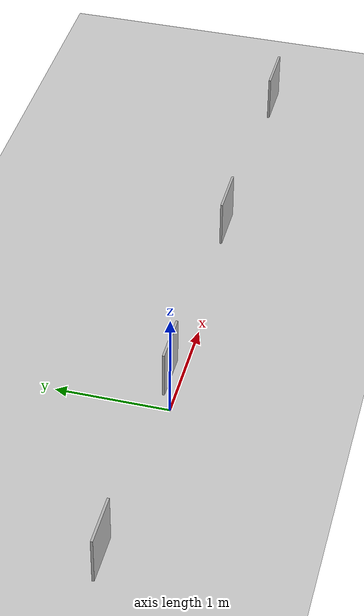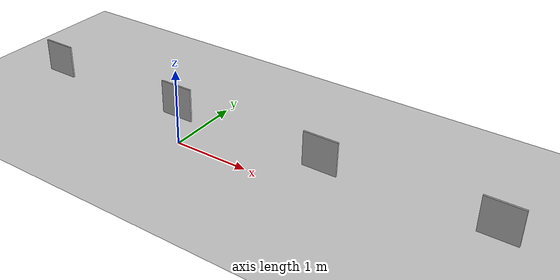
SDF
<?xml version="1.0"?>
<sdf version="1.4">
  <world name="default">
    <include>
      <uri>model://ground_plane</uri>
    </include>
    <include>
      <uri>model://sun</uri>
    </include>
    <model name="tag1">
      <pose>0 0 0.6  0 1.5708 1.5708</pose>
      <static>true</static>
      <link name="tag1_link">
        <visual name="tag1_visual">
          <geometry>
            <mesh><uri>file://tag1.dae</uri></mesh>
          </geometry>
        </visual>
      </link>
    </model>
    <model name="tag2">
      <pose>2 0 0.6  0 1.5708 1.5708</pose>
      <static>true</static>
      <link name="tag2_link">
        <visual name="tag2_visual">
          <geometry>
            <mesh><uri>file://tag2.dae</uri></mesh>
          </geometry>
        </visual>
      </link>
    </model>
    <model name="tag3">
      <pose>-2 0 0.6  0 1.5708 1.5708</pose>
      <static>true</static>
      <link name="tag3_link">
        <visual name="tag3_visual">
          <geometry>
            <mesh><uri>file://tag3.dae</uri></mesh>
          </geometry>
        </visual>
      </link>
    </model>
    <model name="tag4">
      <pose>4 0 0.6  0 1.5708 1.5708</pose>
      <static>true</static>
      <link name="tag4_link">
        <visual name="tag4_visual">
          <geometry>
            <mesh><uri>file://tag4.dae</uri></mesh>
          </geometry>
        </visual>
      </link>
    </model>
  </world>
</sdf>
